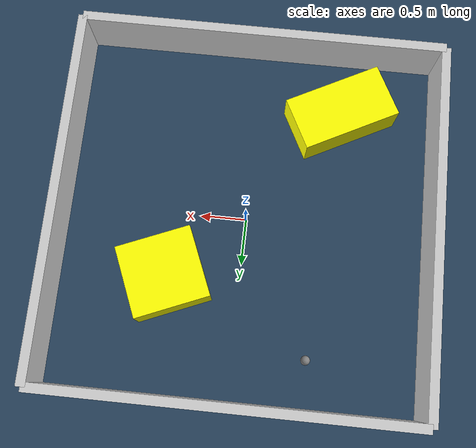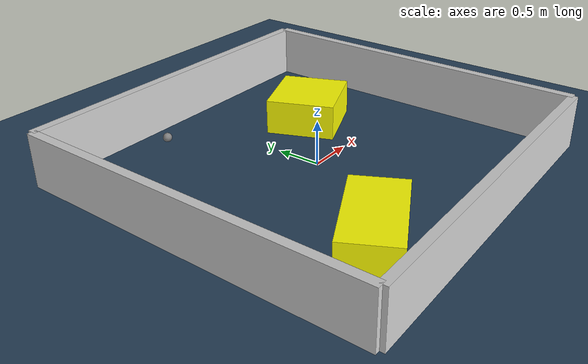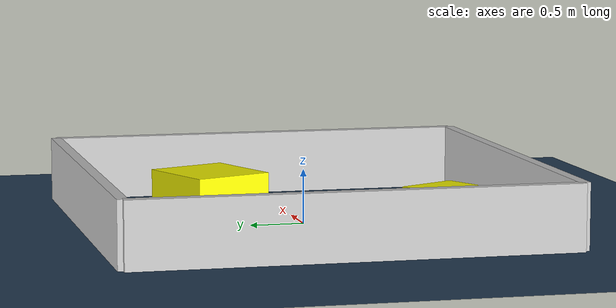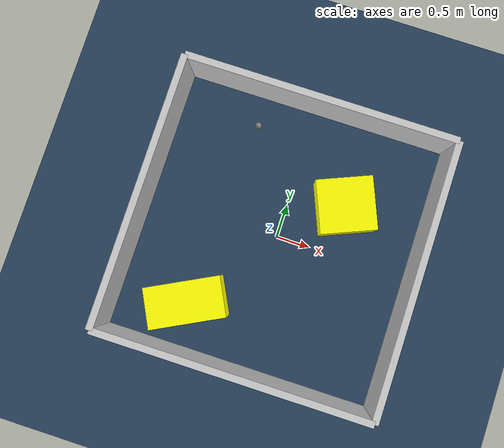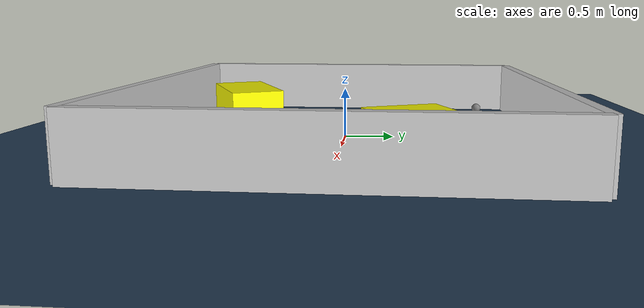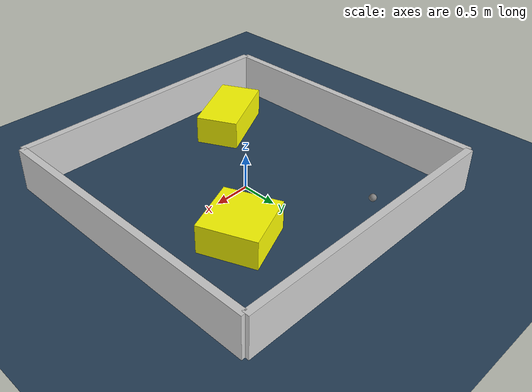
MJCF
<?xml version="1.0" ?>
<mujoco model="generated_environment">
  <option timestep="0.01" integrator="RK4" cone="elliptic"/>
  <default>
    <geom density="1"/>
  </default>
  <asset>
    <texture builtin="gradient" height="3072" rgb1="0.3 0.5 0.7" rgb2="0 0 0" type="skybox" width="512"/>
    <texture builtin="checker" height="300" mark="edge" markrgb="0.8 0.8 0.8" name="groundplane" rgb1="0.2 0.3 0.4" rgb2="0.1 0.2 0.3" type="2d" width="300"/>
    <material name="groundplane" reflectance="0.2" texrepeat="5 5" texture="groundplane" texuniform="true"/>
    <material name="robot" rgba="0.0 1.0 0.0 1"/>
  </asset>
  <worldbody>
    <light dir="0 0 -1" directional="true" pos="0 0 1.5"/>
    <geom condim="4" friction="1.0 0.005 0.001" material="groundplane" name="floor" size="0 0 0.05" type="plane"/>
    <body name="walls">
      <geom name="wall_1" condim="4" pos="-2.0 0.0 0.3" rgba="0.800000011920929 0.800000011920929 0.800000011920929 1.0" size="0.05 2.0 0.3" type="box"/>
      <geom name="wall_2" condim="4" pos="2.0 0.0 0.3" rgba="0.800000011920929 0.800000011920929 0.800000011920929 1.0" size="0.05 2.0 0.3" type="box"/>
      <geom name="wall_3" condim="4" pos="0.0 -2.0 0.3" rgba="0.800000011920929 0.800000011920929 0.800000011920929 1.0" size="2.0 0.05 0.3" type="box"/>
      <geom name="wall_4" condim="4" pos="0.0 2.0 0.3" rgba="0.800000011920929 0.800000011920929 0.800000011920929 1.0" size="2.0 0.05 0.3" type="box"/>
    </body>
    <body name="robot">
      <joint name="joint_x" type="slide" pos="0 0 0" axis="1 0 0"/>
      <joint name="joint_y" type="slide" pos="0 0 0" axis="0 1 0"/>
      <geom name="robot" type="sphere" pos="-0.7630555582330025 1.4596989828042086 0.2" size="0.05" mass="5." friction="1.0 0.005 0.0001" condim="4"/>
      <site name="sensor_ball"/>
    </body>
    <body name="obstacle_1_movable">
      <geom name="obstacle_1_movable" condim="4" pos="0.8000498359005532 0.7124453865851041 0.2" euler="0 0 112.45825586806187" friction="1.0 0.005 0.001" rgba="1 1 0 1" size="0.3888015951960785 0.4075531393824541 0.2" type="box" mass="0.1"/>
      <joint type="free"/>
    </body>
    <body name="obstacle_2_movable">
      <geom name="obstacle_2_movable" condim="4" pos="-0.9375332491926449 -1.289708371622982 0.2" euler="0 0 27.19785101343016" friction="1.0 0.005 0.001" rgba="1 1 0 1" size="0.5461172779499273 0.2955970730688237 0.2" type="box" mass="0.1"/>
      <joint type="free"/>
    </body>
  </worldbody>
  <actuator>
    <motor name="actuator_x" joint="joint_x" gear="1" ctrlrange="-1 1"/>
    <motor name="actuator_y" joint="joint_y" gear="1" ctrlrange="-1 1"/>
  </actuator>
</mujoco>
